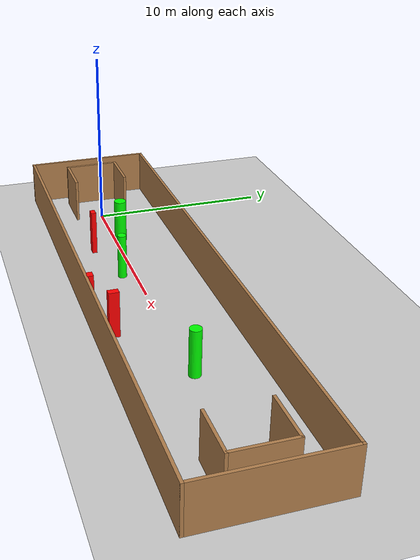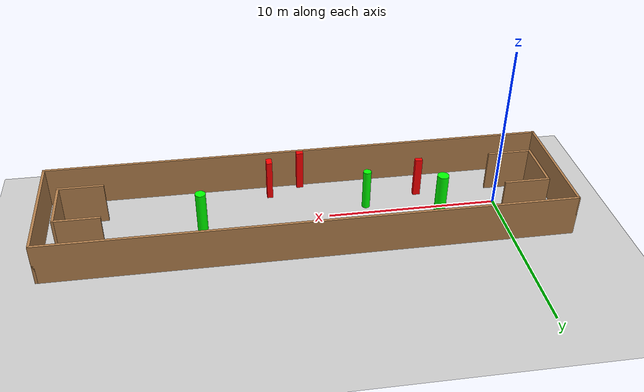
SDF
<sdf version="1.7">
 <world name="default">
  <light name="sun" type="directional">
   <pose>0 0 10 0 -0 0</pose>
   <diffuse>0.8 0.8 0.8 1</diffuse>
   <specular>0.2 0.2 0.2 1</specular>
   <attenuation>
    <range>1000</range>
    <constant>0.9</constant>
    <linear>0.01</linear>
    <quadratic>0.001</quadratic>
   </attenuation>
   <direction>-0.5 0.1 -0.9</direction>
   <spot><inner_angle>0</inner_angle><outer_angle>0</outer_angle><falloff>0</falloff></spot>
  </light>
  <model name="ground_plane">
   <static>1</static>
   <link name="link">
    <collision name="collision">
     <geometry><plane><normal>0 0 1</normal><size>100 100</size></plane></geometry>
     <surface>
      <contact><collide_bitmask>65535</collide_bitmask></contact>
      <friction><ode><mu>100</mu><mu2>50</mu2></ode></friction>
     </surface>
    </collision>
    <visual name="visual">
     <cast_shadows>0</cast_shadows>
     <geometry><plane><normal>0 0 1</normal><size>100 100</size></plane></geometry>
     <material>
      <script><uri>file://media/materials/scripts/gazebo.material</uri><name>Gazebo/Grey</name></script>
     </material>
    </visual>
   </link>
  </model>
  <gravity>0 0 -9.8</gravity>
  <magnetic_field>6e-06 2.3e-05 -4.2e-05</magnetic_field>
  <atmosphere type="adiabatic"/>
  <physics type="ode">
   <max_step_size>0.001</max_step_size>
   <real_time_factor>1</real_time_factor>
   <real_time_update_rate>1000</real_time_update_rate>
  </physics>
  <scene><ambient>0.4 0.4 0.4 1</ambient><background>0.7 0.7 0.7 1</background><shadows>1</shadows></scene>
  <spherical_coordinates>
   <surface_model>EARTH_WGS84</surface_model>
   <latitude_deg>0</latitude_deg>
   <longitude_deg>0</longitude_deg>
   <elevation>0</elevation>
   <heading_deg>0</heading_deg>
  </spherical_coordinates>
  <model name="my_base_walls">
   <link name="Wall_0">
    <collision name="Wall_0_Collision">
     <geometry><box><size>7.15 0.15 2.5</size></box></geometry>
     <pose>0 0 1.25 0 -0 0</pose>
    </collision>
    <visual name="Wall_0_Visual">
     <pose>0 0 1.25 0 -0 0</pose>
     <geometry><box><size>7.15 0.15 2.5</size></box></geometry>
     <material>
      <script><uri>file://media/materials/scripts/gazebo.material</uri><name>Gazebo/Wood</name></script>
      <ambient>1 1 1 1</ambient>
     </material>
     <meta><layer>0</layer></meta>
    </visual>
    <pose>-15 0 0 0 -0 1.5708</pose>
   </link>
   <link name="Wall_10">
    <collision name="Wall_10_Collision">
     <geometry><box><size>2.65 0.15 2.5</size></box></geometry>
     <pose>0 0 1.25 0 -0 0</pose>
    </collision>
    <visual name="Wall_10_Visual">
     <pose>0 0 1.25 0 -0 0</pose>
     <geometry><box><size>2.65 0.15 2.5</size></box></geometry>
     <material>
      <script><uri>file://media/materials/scripts/gazebo.material</uri><name>Gazebo/Wood</name></script>
      <ambient>1 1 1 1</ambient>
     </material>
     <meta><layer>0</layer></meta>
    </visual>
    <pose>-12.75 -1.5 0 0 -0 0</pose>
   </link>
   <link name="Wall_12">
    <collision name="Wall_12_Collision">
     <geometry><box><size>2.65 0.15 2.5</size></box></geometry>
     <pose>0 0 1.25 0 -0 0</pose>
    </collision>
    <visual name="Wall_12_Visual">
     <pose>0 0 1.25 0 -0 0</pose>
     <geometry><box><size>2.65 0.15 2.5</size></box></geometry>
     <material>
      <script><uri>file://media/materials/scripts/gazebo.material</uri><name>Gazebo/Wood</name></script>
      <ambient>1 1 1 1</ambient>
     </material>
     <meta><layer>0</layer></meta>
    </visual>
    <pose>-12.75 1.5 0 0 -0 0</pose>
   </link>
   <link name="Wall_14">
    <collision name="Wall_14_Collision">
     <geometry><box><size>3.15 0.15 2.5</size></box></geometry>
     <pose>0 0 1.25 0 -0 0</pose>
    </collision>
    <visual name="Wall_14_Visual">
     <pose>0 0 1.25 0 -0 0</pose>
     <geometry><box><size>3.15 0.15 2.5</size></box></geometry>
     <material>
      <script><uri>file://media/materials/scripts/gazebo.material</uri><name>Gazebo/Wood</name></script>
      <ambient>1 1 1 1</ambient>
     </material>
     <meta><layer>0</layer></meta>
    </visual>
    <pose>14 0 0 0 -0 -1.5708</pose>
   </link>
   <link name="Wall_15">
    <collision name="Wall_15_Collision">
     <geometry><box><size>2.65 0.15 2.5</size></box></geometry>
     <pose>0 0 1.25 0 -0 0</pose>
    </collision>
    <visual name="Wall_15_Visual">
     <pose>0 0 1.25 0 -0 0</pose>
     <geometry><box><size>2.65 0.15 2.5</size></box></geometry>
     <material>
      <script><uri>file://media/materials/scripts/gazebo.material</uri><name>Gazebo/Wood</name></script>
      <ambient>1 1 1 1</ambient>
     </material>
     <meta><layer>0</layer></meta>
    </visual>
    <pose>12.75 -1.5 0 0 -0 3.14159</pose>
   </link>
   <link name="Wall_17">
    <collision name="Wall_17_Collision">
     <geometry><box><size>2.65 0.15 2.5</size></box></geometry>
     <pose>0 0 1.25 0 -0 0</pose>
    </collision>
    <visual name="Wall_17_Visual">
     <pose>0 0 1.25 0 -0 0</pose>
     <geometry><box><size>2.65 0.15 2.5</size></box></geometry>
     <material>
      <script><uri>file://media/materials/scripts/gazebo.material</uri><name>Gazebo/Wood</name></script>
      <ambient>1 1 1 1</ambient>
     </material>
     <meta><layer>0</layer></meta>
    </visual>
    <pose>12.75 1.5 0 0 -0 3.14159</pose>
   </link>
   <link name="Wall_2">
    <collision name="Wall_2_Collision">
     <geometry><box><size>30.15 0.15 2.5</size></box></geometry>
     <pose>0 0 1.25 0 -0 0</pose>
    </collision>
    <visual name="Wall_2_Visual">
     <pose>0 0 1.25 0 -0 0</pose>
     <geometry><box><size>30.15 0.15 2.5</size></box></geometry>
     <material>
      <script><uri>file://media/materials/scripts/gazebo.material</uri><name>Gazebo/Wood</name></script>
      <ambient>1 1 1 1</ambient>
     </material>
     <meta><layer>0</layer></meta>
    </visual>
    <pose>-0 -3.5 0 0 -0 0</pose>
   </link>
   <link name="Wall_4">
    <collision name="Wall_4_Collision">
     <geometry><box><size>30.15 0.15 2.5</size></box></geometry>
     <pose>0 0 1.25 0 -0 0</pose>
    </collision>
    <visual name="Wall_4_Visual">
     <pose>0 0 1.25 0 -0 0</pose>
     <geometry><box><size>30.15 0.15 2.5</size></box></geometry>
     <material>
      <script><uri>file://media/materials/scripts/gazebo.material</uri><name>Gazebo/Wood</name></script>
      <ambient>1 1 1 1</ambient>
     </material>
     <meta><layer>0</layer></meta>
    </visual>
    <pose>-0 3.5 0 0 -0 0</pose>
   </link>
   <link name="Wall_6">
    <collision name="Wall_6_Collision">
     <geometry><box><size>7.15 0.15 2.5</size></box></geometry>
     <pose>0 0 1.25 0 -0 0</pose>
    </collision>
    <visual name="Wall_6_Visual">
     <pose>0 0 1.25 0 -0 0</pose>
     <geometry><box><size>7.15 0.15 2.5</size></box></geometry>
     <material>
      <script><uri>file://media/materials/scripts/gazebo.material</uri><name>Gazebo/Wood</name></script>
      <ambient>1 1 1 1</ambient>
     </material>
     <meta><layer>0</layer></meta>
    </visual>
    <pose>15 0 0 0 -0 -1.5708</pose>
   </link>
   <link name="Wall_9">
    <collision name="Wall_9_Collision">
     <geometry><box><size>3.15 0.15 2.5</size></box></geometry>
     <pose>0 0 1.25 0 -0 0</pose>
    </collision>
    <visual name="Wall_9_Visual">
     <pose>0 0 1.25 0 -0 0</pose>
     <geometry><box><size>3.15 0.15 2.5</size></box></geometry>
     <material>
      <script><uri>file://media/materials/scripts/gazebo.material</uri><name>Gazebo/Wood</name></script>
      <ambient>1 1 1 1</ambient>
     </material>
     <meta><layer>0</layer></meta>
    </visual>
    <pose>-14 0 0 0 -0 -1.5708</pose>
   </link>
   <static>1</static>
   <pose>11.5 0 0 0 -0 0</pose>
  </model>
  <model name="cylinder1">
   <static>1</static>
   <link name="link">
    <inertial>
     <mass>1</mass>
     <inertia><ixx>0.5</ixx><ixy>0</ixy><ixz>0</ixz><iyy>0.5</iyy><iyz>0</iyz><izz>1</izz></inertia>
    </inertial>
    <collision name="collision">
     <geometry><cylinder><radius>0.34058252290514923</radius><length>2.5</length></cylinder></geometry>
    </collision>
    <visual name="visual">
     <geometry><cylinder><radius>0.34058252290514923</radius><length>2.5</length></cylinder></geometry>
     <material>
      <ambient>0 1 0 1</ambient>
      <diffuse>0 1 0 1</diffuse>
      <specular>0.1 0.1 0.1 1</specular>
      <emissive>0 0 0 0</emissive>
     </material>
    </visual>
   </link>
   <pose>3.41758615702153 0.33586966846423616 1.25 0 0 0</pose>
  </model>
  <model name="cylinder2">
   <static>1</static>
   <link name="link">
    <inertial>
     <mass>1</mass>
     <inertia><ixx>0.5</ixx><ixy>0</ixy><ixz>0</ixz><iyy>0.5</iyy><iyz>0</iyz><izz>1</izz></inertia>
    </inertial>
    <collision name="collision">
     <geometry><cylinder><radius>0.23716016610818638</radius><length>2.5</length></cylinder></geometry>
    </collision>
    <visual name="visual">
     <geometry><cylinder><radius>0.23716016610818638</radius><length>2.5</length></cylinder></geometry>
     <material>
      <ambient>0 1 0 1</ambient>
      <diffuse>0 1 0 1</diffuse>
      <specular>0.1 0.1 0.1 1</specular>
      <emissive>0 0 0 0</emissive>
     </material>
    </visual>
   </link>
   <pose>7.707373217337526 -0.6850141246959383 1.25 0 0 0</pose>
  </model>
  <model name="cylinder3">
   <static>1</static>
   <link name="link">
    <inertial>
     <mass>1</mass>
     <inertia><ixx>0.5</ixx><ixy>0</ixy><ixz>0</ixz><iyy>0.5</iyy><iyz>0</iyz><izz>1</izz></inertia>
    </inertial>
    <collision name="collision">
     <geometry><cylinder><radius>0.30151486161375385</radius><length>2.5</length></cylinder></geometry>
    </collision>
    <visual name="visual">
     <geometry><cylinder><radius>0.30151486161375385</radius><length>2.5</length></cylinder></geometry>
     <material>
      <ambient>0 1 0 1</ambient>
      <diffuse>0 1 0 1</diffuse>
      <specular>0.1 0.1 0.1 1</specular>
      <emissive>0 0 0 0</emissive>
     </material>
    </visual>
   </link>
   <pose>17.49511713886408 0.12580059828411816 1.25 0 0 0</pose>
  </model>
  <model name="box1">
   <static>1</static>
   <link name="link">
    <inertial>
     <mass>1</mass>
     <inertia><ixx>0.083</ixx><ixy>0</ixy><ixz>0</ixz><iyy>0.083</iyy><iyz>0</iyz><izz>0.083</izz></inertia>
    </inertial>
    <collision name="collision">
     <geometry><box><size>0.4284761191524993 0.27164670742031216 2.5</size></box></geometry>
    </collision>
    <visual name="visual">
     <geometry><box><size>0.4284761191524993 0.27164670742031216 2.5</size></box></geometry>
     <material>
      <ambient>1 0 0 1</ambient>
      <diffuse>1 0 0 1</diffuse>
      <specular>0.1 0.1 0.1 1</specular>
      <emissive>0 0 0 0</emissive>
     </material>
    </visual>
    <sensor name="my_contact" type="contact">
     <contact><collision>box_collision</collision><topic>__default_topic__</topic></contact>
    </sensor>
   </link>
   <pose>4.408832207898252 -1.505768646766502 1.25 0 0 0</pose>
  </model>
  <model name="box2">
   <static>1</static>
   <link name="link">
    <inertial>
     <mass>1</mass>
     <inertia><ixx>0.083</ixx><ixy>0</ixy><ixz>0</ixz><iyy>0.083</iyy><iyz>0</iyz><izz>0.083</izz></inertia>
    </inertial>
    <collision name="collision">
     <geometry><box><size>0.4115308322371223 0.3311872056427767 2.5</size></box></geometry>
    </collision>
    <visual name="visual">
     <geometry><box><size>0.4115308322371223 0.3311872056427767 2.5</size></box></geometry>
     <material>
      <ambient>1 0 0 1</ambient>
      <diffuse>1 0 0 1</diffuse>
      <specular>0.1 0.1 0.1 1</specular>
      <emissive>0 0 0 0</emissive>
     </material>
    </visual>
    <sensor name="my_contact" type="contact">
     <contact><collision>box_collision</collision><topic>__default_topic__</topic></contact>
    </sensor>
   </link>
   <pose>11.374691655284838 -3.285529951428186 1.25 0 0 0</pose>
  </model>
  <model name="box3">
   <static>1</static>
   <link name="link">
    <inertial>
     <mass>1</mass>
     <inertia><ixx>0.083</ixx><ixy>0</ixy><ixz>0</ixz><iyy>0.083</iyy><iyz>0</iyz><izz>0.083</izz></inertia>
    </inertial>
    <collision name="collision">
     <geometry><box><size>0.33980932886238835 0.5463553296161323 2.5</size></box></geometry>
    </collision>
    <visual name="visual">
     <geometry><box><size>0.33980932886238835 0.5463553296161323 2.5</size></box></geometry>
     <material>
      <ambient>1 0 0 1</ambient>
      <diffuse>1 0 0 1</diffuse>
      <specular>0.1 0.1 0.1 1</specular>
      <emissive>0 0 0 0</emissive>
     </material>
    </visual>
    <sensor name="my_contact" type="contact">
     <contact><collision>box_collision</collision><topic>__default_topic__</topic></contact>
    </sensor>
   </link>
   <pose>13.311845432911275 -2.581725674114069 1.25 0 0 0</pose>
  </model>
 </world>
</sdf>
